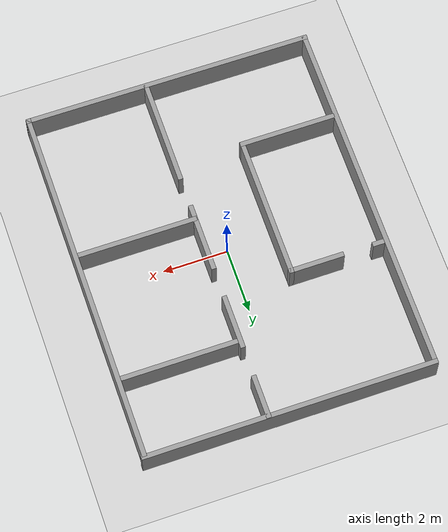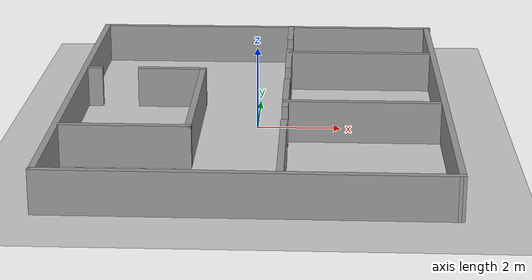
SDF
<sdf version="1.7">
 <world name="default">
  <light name="sun" type="directional">
   <pose>0 0 10 0 -0 0</pose>
   <diffuse>0.8 0.8 0.8 1</diffuse>
   <specular>0.2 0.2 0.2 1</specular>
   <attenuation>
    <range>1000</range>
    <constant>0.9</constant>
    <linear>0.01</linear>
    <quadratic>0.001</quadratic>
   </attenuation>
   <direction>-0.5 0.1 -0.9</direction>
   <spot><inner_angle>0</inner_angle><outer_angle>0</outer_angle><falloff>0</falloff></spot>
  </light>
  <model name="ground_plane">
   <static>1</static>
   <link name="link">
    <collision name="collision">
     <geometry><plane><normal>0 0 1</normal><size>100 100</size></plane></geometry>
     <surface><friction><ode><mu>100</mu><mu2>50</mu2></ode></friction></surface>
    </collision>
    <visual name="visual">
     <cast_shadows>0</cast_shadows>
     <geometry><plane><normal>0 0 1</normal><size>100 100</size></plane></geometry>
     <material>
      <script><uri>file://media/materials/scripts/gazebo.material</uri><name>Gazebo/Grey</name></script>
     </material>
    </visual>
   </link>
  </model>
  <gravity>0 0 -9.8</gravity>
  <magnetic_field>6e-06 2.3e-05 -4.2e-05</magnetic_field>
  <atmosphere type="adiabatic"/>
  <physics type="ode">
   <max_step_size>0.001</max_step_size>
   <real_time_factor>1</real_time_factor>
   <real_time_update_rate>1000</real_time_update_rate>
  </physics>
  <scene><ambient>0.4 0.4 0.4 1</ambient><background>0.7 0.7 0.7 1</background><shadows>1</shadows></scene>
  <audio><device>default</device></audio>
  <spherical_coordinates>
   <surface_model>EARTH_WGS84</surface_model>
   <latitude_deg>0</latitude_deg>
   <longitude_deg>0</longitude_deg>
   <elevation>0</elevation>
   <heading_deg>0</heading_deg>
  </spherical_coordinates>
  <model name="my2_room">
   <link name="Wall_20">
    <collision name="Wall_20_Collision">
     <geometry><box><size>11.265 0.15 1</size></box></geometry>
     <pose>0 0 0.5 0 -0 0</pose>
    </collision>
    <visual name="Wall_20_Visual">
     <pose>0 0 0.5 0 -0 0</pose>
     <geometry><box><size>11.265 0.15 1</size></box></geometry>
     <material>
      <script><uri>file://media/materials/scripts/gazebo.material</uri><name>Gazebo/Grey</name></script>
      <ambient>1 1 1 1</ambient>
     </material>
     <meta><layer>0</layer></meta>
    </visual>
    <pose>-4.4194 0.033097 0 0 -0 -1.5708</pose>
   </link>
   <link name="Wall_23">
    <pose>-2.86627 1.5756 0 0 -0 3.14159</pose>
    <visual name="Wall_23_Visual_0">
     <pose>-0.642932 0 0.5 0 -0 0</pose>
     <geometry><box><size>1.71413 0.15 1</size></box></geometry>
     <material>
      <script><uri>file://media/materials/scripts/gazebo.material</uri><name>Gazebo/Grey</name></script>
      <ambient>1 1 1 1</ambient>
     </material>
     <meta><layer>0</layer></meta>
    </visual>
    <collision name="Wall_23_Collision_0">
     <geometry><box><size>1.71413 0.15 1</size></box></geometry>
     <pose>-0.642932 0 0.5 0 -0 0</pose>
    </collision>
    <visual name="Wall_23_Visual_1">
     <pose>1.30707 0 0.5 0 -0 0</pose>
     <geometry><box><size>0.385865 0.15 1</size></box></geometry>
     <material>
      <script><uri>file://media/materials/scripts/gazebo.material</uri><name>Gazebo/Grey</name></script>
      <ambient>1 1 1 1</ambient>
     </material>
     <meta><layer>0</layer></meta>
    </visual>
    <collision name="Wall_23_Collision_1">
     <geometry><box><size>0.385865 0.15 1</size></box></geometry>
     <pose>1.30707 0 0.5 0 -0 0</pose>
    </collision>
   </link>
   <link name="Wall_26">
    <pose>0.680597 0.025597 0 0 -0 -1.5708</pose>
    <visual name="Wall_26_Visual_0">
     <pose>-4.9445 0 0.5 0 -0 0</pose>
     <geometry><box><size>1.361 0.15 1</size></box></geometry>
     <material>
      <script><uri>file://media/materials/scripts/gazebo.material</uri><name>Gazebo/Grey</name></script>
      <ambient>1 1 1 1</ambient>
     </material>
     <meta><layer>0</layer></meta>
    </visual>
    <collision name="Wall_26_Collision_0">
     <geometry><box><size>1.361 0.15 1</size></box></geometry>
     <pose>-4.9445 0 0.5 0 -0 0</pose>
    </collision>
    <visual name="Wall_26_Visual_1">
     <pose>-2.5145 0 0.5 0 -0 0</pose>
     <geometry><box><size>1.699 0.15 1</size></box></geometry>
     <material>
      <script><uri>file://media/materials/scripts/gazebo.material</uri><name>Gazebo/Grey</name></script>
      <ambient>1 1 1 1</ambient>
     </material>
     <meta><layer>0</layer></meta>
    </visual>
    <collision name="Wall_26_Collision_1">
     <geometry><box><size>1.699 0.15 1</size></box></geometry>
     <pose>-2.5145 0 0.5 0 -0 0</pose>
    </collision>
    <visual name="Wall_26_Visual_2">
     <pose>0.3145 0 0.5 0 -0 0</pose>
     <geometry><box><size>2.159 0.15 1</size></box></geometry>
     <material>
      <script><uri>file://media/materials/scripts/gazebo.material</uri><name>Gazebo/Grey</name></script>
      <ambient>1 1 1 1</ambient>
     </material>
     <meta><layer>0</layer></meta>
    </visual>
    <collision name="Wall_26_Collision_2">
     <geometry><box><size>2.159 0.15 1</size></box></geometry>
     <pose>0.3145 0 0.5 0 -0 0</pose>
    </collision>
    <visual name="Wall_26_Visual_3">
     <pose>3.9595 0 0.5 0 -0 0</pose>
     <geometry><box><size>3.331 0.15 1</size></box></geometry>
     <material>
      <script><uri>file://media/materials/scripts/gazebo.material</uri><name>Gazebo/Grey</name></script>
      <ambient>1 1 1 1</ambient>
     </material>
     <meta><layer>0</layer></meta>
    </visual>
    <collision name="Wall_26_Collision_3">
     <geometry><box><size>3.331 0.15 1</size></box></geometry>
     <pose>3.9595 0 0.5 0 -0 0</pose>
    </collision>
   </link>
   <link name="Wall_34">
    <collision name="Wall_34_Collision">
     <geometry><box><size>8.97703 0.15 1</size></box></geometry>
     <pose>0 0 0.5 0 -0 0</pose>
    </collision>
    <visual name="Wall_34_Visual">
     <pose>0 0 0.5 0 -0 0</pose>
     <geometry><box><size>8.97703 0.15 1</size></box></geometry>
     <material>
      <script><uri>file://media/materials/scripts/gazebo.material</uri><name>Gazebo/Grey</name></script>
      <ambient>1 1 1 1</ambient>
     </material>
     <meta><layer>0</layer></meta>
    </visual>
    <pose>-0.016903 -5.5789 0 0 -0 -0.002606</pose>
   </link>
   <link name="Wall_36">
    <collision name="Wall_36_Collision">
     <geometry><box><size>3.75 0.15 1</size></box></geometry>
     <pose>0 0 0.5 0 -0 0</pose>
    </collision>
    <visual name="Wall_36_Visual">
     <pose>0 0 0.5 0 -0 0</pose>
     <geometry><box><size>3.75 0.15 1</size></box></geometry>
     <material>
      <script><uri>file://media/materials/scripts/gazebo.material</uri><name>Gazebo/Grey</name></script>
      <ambient>1 1 1 1</ambient>
     </material>
     <meta><layer>0</layer></meta>
    </visual>
    <pose>2.4876 3.1426 0 0 -0 0</pose>
   </link>
   <link name="Wall_38">
    <collision name="Wall_38_Collision">
     <geometry><box><size>3.75 0.15 1</size></box></geometry>
     <pose>0 0 0.5 0 -0 0</pose>
    </collision>
    <visual name="Wall_38_Visual">
     <pose>0 0 0.5 0 -0 0</pose>
     <geometry><box><size>3.75 0.15 1</size></box></geometry>
     <material>
      <script><uri>file://media/materials/scripts/gazebo.material</uri><name>Gazebo/Grey</name></script>
      <ambient>1 1 1 1</ambient>
     </material>
     <meta><layer>0</layer></meta>
    </visual>
    <pose>2.5076 -0.917403 0 0 -0 0</pose>
   </link>
   <link name="Wall_41">
    <collision name="Wall_41_Collision">
     <geometry><box><size>4.5 0.15 1</size></box></geometry>
     <pose>0 0 0.5 0 -0 0</pose>
    </collision>
    <visual name="Wall_41_Visual">
     <pose>0 0 0.5 0 -0 0</pose>
     <geometry><box><size>4.5 0.15 1</size></box></geometry>
     <material>
      <script><uri>file://media/materials/scripts/gazebo.material</uri><name>Gazebo/Grey</name></script>
      <ambient>1 1 1 1</ambient>
     </material>
     <meta><layer>0</layer></meta>
    </visual>
    <pose>-1.4414 -0.599403 0 0 -0 -1.5708</pose>
   </link>
   <link name="Wall_42">
    <collision name="Wall_42_Collision">
     <geometry><box><size>3 0.15 1</size></box></geometry>
     <pose>0 0 0.5 0 -0 0</pose>
    </collision>
    <visual name="Wall_42_Visual">
     <pose>0 0 0.5 0 -0 0</pose>
     <geometry><box><size>3 0.15 1</size></box></geometry>
     <material>
      <script><uri>file://media/materials/scripts/gazebo.material</uri><name>Gazebo/Grey</name></script>
      <ambient>1 1 1 1</ambient>
     </material>
     <meta><layer>0</layer></meta>
    </visual>
    <pose>-2.8664 -2.7744 0 0 -0 3.14159</pose>
   </link>
   <link name="Wall_47">
    <collision name="Wall_47_Collision">
     <geometry><box><size>11.25 0.15 1</size></box></geometry>
     <pose>0 0 0.5 0 -0 0</pose>
    </collision>
    <visual name="Wall_47_Visual">
     <pose>0 0 0.5 0 -0 0</pose>
     <geometry><box><size>11.25 0.15 1</size></box></geometry>
     <material>
      <script><uri>file://media/materials/scripts/gazebo.material</uri><name>Gazebo/Grey</name></script>
      <ambient>1 1 1 1</ambient>
     </material>
     <meta><layer>0</layer></meta>
    </visual>
    <pose>4.3966 -0.040403 0 0 -0 1.5708</pose>
   </link>
   <link name="Wall_52">
    <collision name="Wall_52_Collision">
     <geometry><box><size>9 0.15 1</size></box></geometry>
     <pose>0 0 0.5 0 -0 0</pose>
    </collision>
    <visual name="Wall_52_Visual">
     <pose>0 0 0.5 0 -0 0</pose>
     <geometry><box><size>9 0.15 1</size></box></geometry>
     <material>
      <script><uri>file://media/materials/scripts/gazebo.material</uri><name>Gazebo/Grey</name></script>
      <ambient>1 1 1 1</ambient>
     </material>
     <meta><layer>0</layer></meta>
    </visual>
    <pose>0.005597 5.5906 0 0 -0 0</pose>
   </link>
   <static>1</static>
  </model>
 </world>
</sdf>
